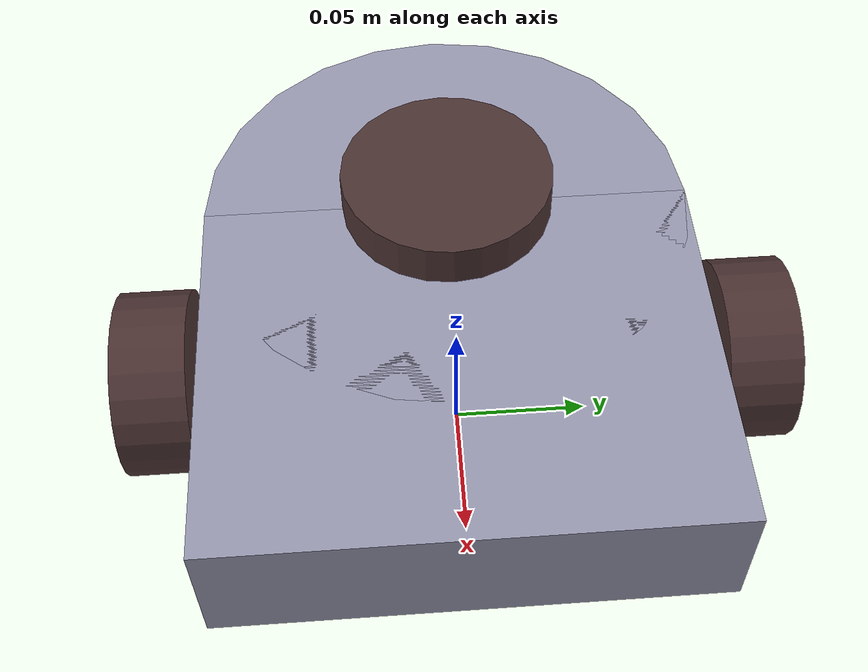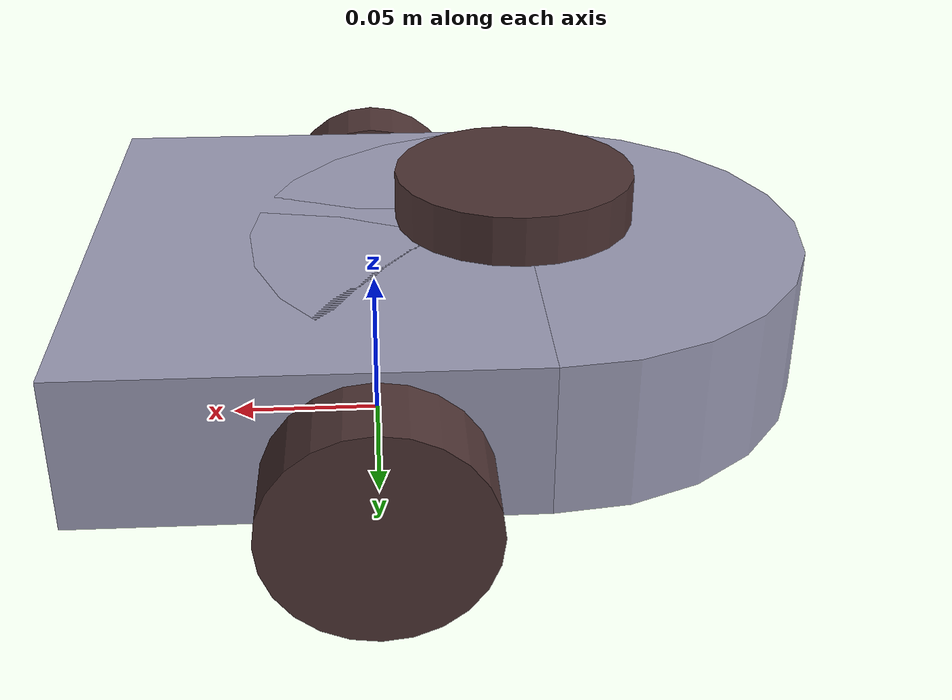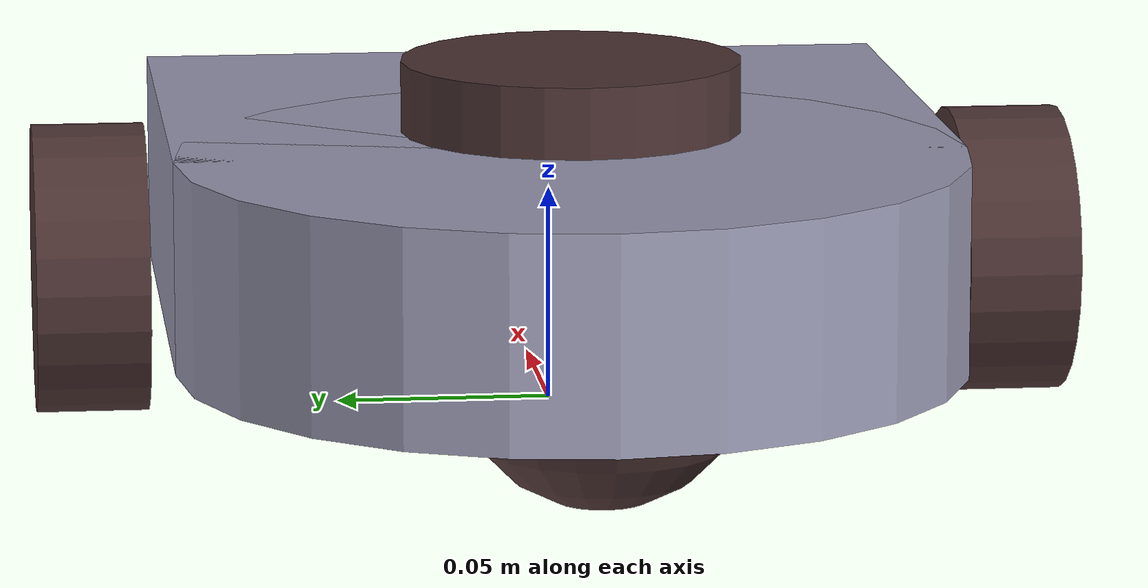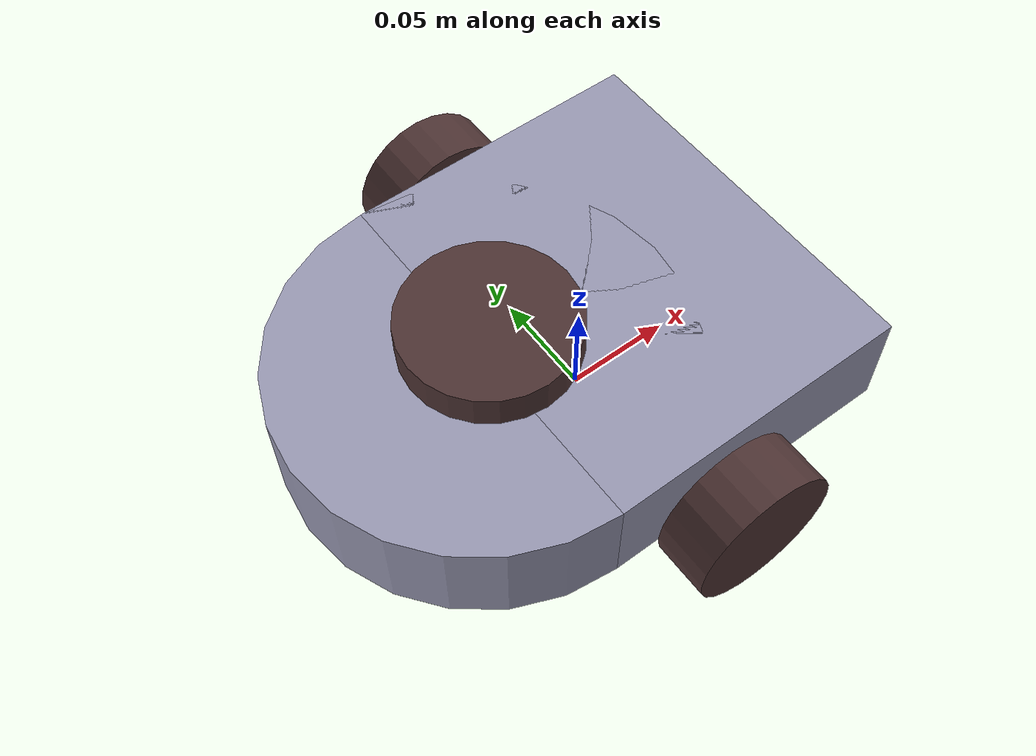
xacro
<?xml version="1.0"?>
<robot name="phoebe" xmlns:xacro="http://ros.org/wiki/xacro">

  <xacro:property name="body_width" value="0.18" />
  <xacro:property name="body_height" value="0.04875" />
  <xacro:property name="body_rect_length" value="0.141" />
  <xacro:property name="body_center_to_cylinder" value="0.05" />
  <xacro:property name="body_center_to_bottom" value="0.015" />
  <xacro:property name="neato_diameter" value="0.077" />
  <xacro:property name="neato_height" value="0.016" />
  <xacro:property name="neato_offset_x" value="-0.046" />
  <xacro:property name="neato_offset_y" value="0" />
  <xacro:property name="neato_offset_z" value="0.047" />
  <xacro:property name="wheel_width" value="0.026" />
  <xacro:property name="wheel_base" value="0.215" />
  <xacro:property name="wheel_diameter" value="0.067" />

  <material name="neato">
    <color rgba="0.3 0.2 0.2 1"/>
  </material>

  <material name="wheel">
    <color rgba="0.3 0.2 0.2 1"/>
  </material>

  <material name="body">
    <color rgba="0.6 0.6 0.7 1"/>
  </material>

  <link name="base_link">
    <visual>
      <origin xyz="${body_rect_length/2 - body_center_to_cylinder} 0 ${body_height/2 - body_center_to_bottom + wheel_diameter/2}" rpy="0 0 0"/>
      <geometry>
        <box size="${body_rect_length} ${body_width} ${body_height}"/>
      </geometry>
      <material name="body" />
    </visual>
    <visual>
      <origin xyz="${-body_center_to_cylinder} 0 ${body_height/2 - body_center_to_bottom + wheel_diameter/2}" rpy="0 0 0"/>
      <geometry>
        <cylinder radius="${body_width/2}" length="${body_height}"/>
      </geometry>
      <material name="body" />
    </visual>
  </link>

  <link name="neato_laser">
    <visual>
      <geometry>
        <cylinder radius="${neato_diameter/2}" length="${neato_height}"/>
      </geometry>
      <material name="neato" />
    </visual>
  </link>

  <joint name="base_neato_joint" type="fixed">
    <parent link="base_link"/>
    <child link="neato_laser"/>
    <origin xyz="${neato_offset_x} ${neato_offset_y} ${neato_offset_z + wheel_diameter/2}" rpy="0 0 ${pi}" />
  </joint>

  <xacro:macro name="wheel" params="side reflect">
    <link name="wheel_${side}">
      <visual>
        <origin xyz="0 0 0" rpy="${reflect*-1*pi/2} 0 0"/>
        <geometry>
          <cylinder radius="${wheel_diameter/2}" length="${wheel_width}"/>
        </geometry>
        <material name="wheel" />
      </visual>
    </link>
    <joint name="base_wheel_${side}_joint" type="fixed"> <!-- TODO: type="continuous" when we read encoder data and publish wheel angle -->
      <axis xyz="0 1 0" rpy="0 0 0" />
      <parent link="base_link" />
      <child link="wheel_${side}" />
      <origin xyz="0 ${reflect * wheel_base/2} ${wheel_diameter/2}" rpy="0 0 0" />
    </joint>
  </xacro:macro>

  <xacro:wheel side="left" reflect="1" />
  <xacro:wheel side="right" reflect="-1" />

  <link name="wheel_caster">
    <visual>
      <geometry>
        <sphere radius="${wheel_diameter/2}" />
      </geometry>
      <material name="wheel" />
    </visual>
  </link>

  <joint name="base_caster" type="fixed">
    <parent link="base_link" />
    <child link="wheel_caster" />
    <origin xyz="${-body_center_to_cylinder-body_width/2+wheel_diameter/2} 0 ${wheel_diameter/2}" />
  </joint>

</robot>
